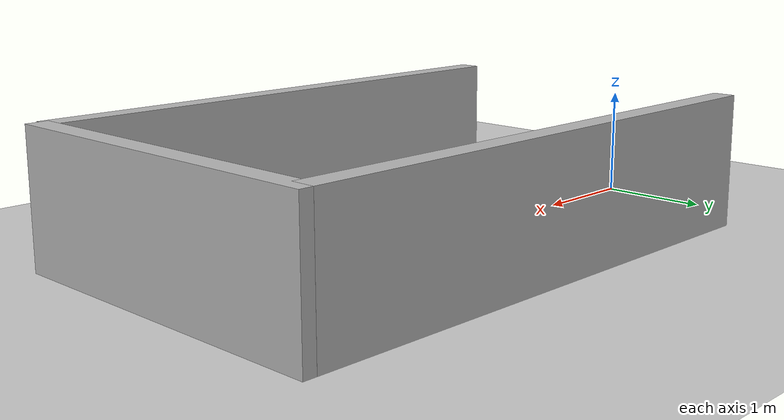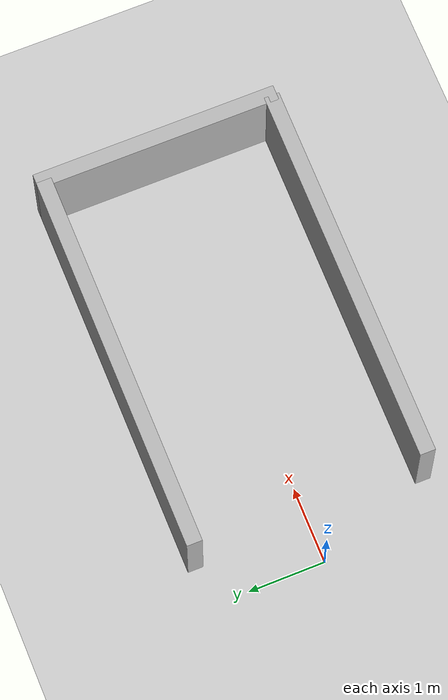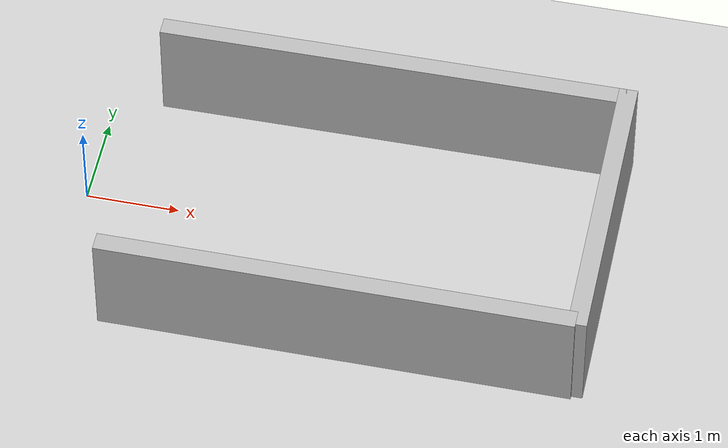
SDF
<?xml version="1.0"?>
<sdf version="1.6">
  <world name="v2-04e4-maneuver-s4735">
    <gravity>0 0 -9.81</gravity>
    <physics name="v2_deterministic" type="ode">
      <max_step_size>0.002</max_step_size>
      <real_time_update_rate>500</real_time_update_rate>
    </physics>
    <include>
      <uri>model://sun</uri>
    </include>
    <include>
      <uri>model://ground_plane</uri>
    </include>
    <model name="bay-left">
      <static>true</static>
      <pose>3.003636580 1.501622927 0.600000000 0 0 0.001539004</pose>
      <link name="link">
        <collision name="collision">
          <geometry>
            <box>
              <size>5.000000 0.200000 1.200000</size>
            </box>
          </geometry>
        </collision>
        <visual name="visual">
          <geometry>
            <box>
              <size>5.000000 0.200000 1.200000</size>
            </box>
          </geometry>
        </visual>
      </link>
    </model>
    <model name="bay-right">
      <static>true</static>
      <pose>3.007674182 -1.522076618 0.600000000 0 0 -0.002784470</pose>
      <link name="link">
        <collision name="collision">
          <geometry>
            <box>
              <size>5.000000 0.200000 1.200000</size>
            </box>
          </geometry>
        </collision>
        <visual name="visual">
          <geometry>
            <box>
              <size>5.000000 0.200000 1.200000</size>
            </box>
          </geometry>
        </visual>
      </link>
    </model>
    <model name="bay-back">
      <static>true</static>
      <pose>5.521961493 0.005078512 0.600000000 0 0 0.001322998</pose>
      <link name="link">
        <collision name="collision">
          <geometry>
            <box>
              <size>0.200000 3.200000 1.200000</size>
            </box>
          </geometry>
        </collision>
        <visual name="visual">
          <geometry>
            <box>
              <size>0.200000 3.200000 1.200000</size>
            </box>
          </geometry>
        </visual>
      </link>
    </model>
  </world>
</sdf>
